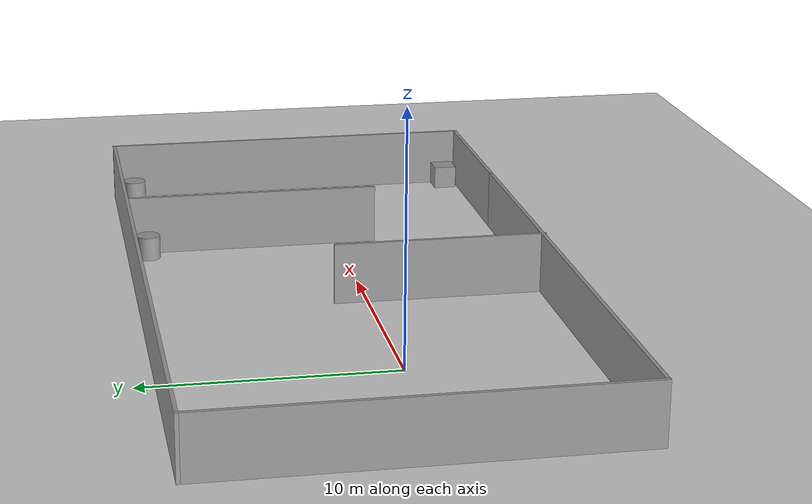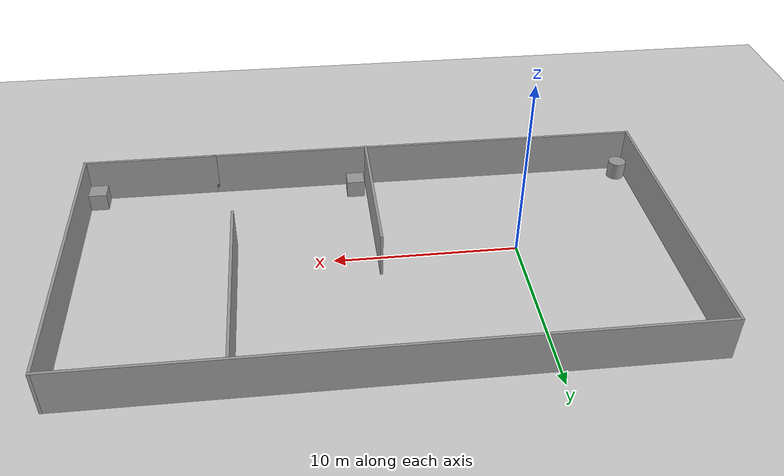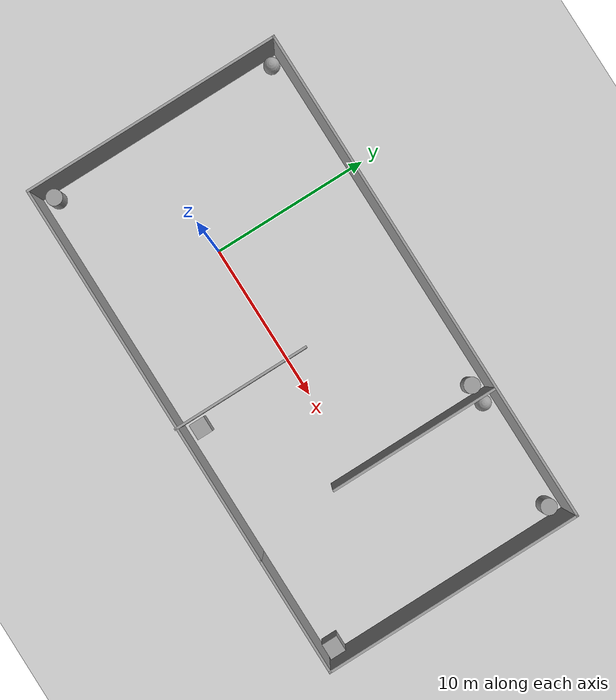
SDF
<sdf version="1.7">
 <world name="default">
  <light name="sun" type="directional">
   <pose>0 0 10 0 -0 0</pose>
   <diffuse>0.8 0.8 0.8 1</diffuse>
   <specular>0.2 0.2 0.2 1</specular>
   <attenuation>
    <range>1000</range>
    <constant>0.9</constant>
    <linear>0.01</linear>
    <quadratic>0.001</quadratic>
   </attenuation>
   <direction>-0.5 0.1 -0.9</direction>
   <spot><inner_angle>0</inner_angle><outer_angle>0</outer_angle><falloff>0</falloff></spot>
  </light>
  <model name="ground_plane">
   <static>1</static>
   <link name="link">
    <collision name="collision">
     <geometry><plane><normal>0 0 1</normal><size>100 100</size></plane></geometry>
     <surface>
      <contact><collide_bitmask>65535</collide_bitmask></contact>
      <friction><ode><mu>100</mu><mu2>50</mu2></ode></friction>
     </surface>
    </collision>
    <visual name="visual">
     <cast_shadows>0</cast_shadows>
     <geometry><plane><normal>0 0 1</normal><size>100 100</size></plane></geometry>
     <material>
      <script><uri>file://media/materials/scripts/gazebo.material</uri><name>Gazebo/Grey</name></script>
     </material>
    </visual>
   </link>
  </model>
  <gravity>0 0 -9.8</gravity>
  <magnetic_field>6e-06 2.3e-05 -4.2e-05</magnetic_field>
  <atmosphere type="adiabatic"/>
  <physics type="ode">
   <max_step_size>0.001</max_step_size>
   <real_time_factor>1</real_time_factor>
   <real_time_update_rate>1000</real_time_update_rate>
  </physics>
  <scene><ambient>0.4 0.4 0.4 1</ambient><background>0.7 0.7 0.7 1</background><shadows>1</shadows></scene>
  <spherical_coordinates>
   <surface_model>EARTH_WGS84</surface_model>
   <latitude_deg>0</latitude_deg>
   <longitude_deg>0</longitude_deg>
   <elevation>0</elevation>
   <heading_deg>0</heading_deg>
  </spherical_coordinates>
  <model name="xzk2">
   <pose>7.72474 0.897236 0 0 -0 0</pose>
   <link name="Wall_1">
    <collision name="Wall_1_Collision">
     <geometry><box><size>24.5 0.15 2.5</size></box></geometry>
     <pose>0 0 1.25 0 -0 0</pose>
    </collision>
    <visual name="Wall_1_Visual">
     <pose>0 0 1.25 0 -0 0</pose>
     <geometry><box><size>24.5 0.15 2.5</size></box></geometry>
     <material>
      <script><uri>file://media/materials/scripts/gazebo.material</uri><name>Gazebo/Grey</name></script>
      <ambient>1 1 1 1</ambient>
     </material>
     <meta><layer>0</layer></meta>
    </visual>
    <pose>-3.6 -8.13926 0 0 -0 0</pose>
   </link>
   <link name="Wall_2">
    <collision name="Wall_2_Collision">
     <geometry><box><size>7.5 0.15 2.5</size></box></geometry>
     <pose>0 0 1.25 0 -0 0</pose>
    </collision>
    <visual name="Wall_2_Visual">
     <pose>0 0 1.25 0 -0 0</pose>
     <geometry><box><size>7.5 0.15 2.5</size></box></geometry>
     <material>
      <script><uri>file://media/materials/scripts/gazebo.material</uri><name>Gazebo/Grey</name></script>
      <ambient>1 1 1 1</ambient>
     </material>
     <meta><layer>0</layer></meta>
    </visual>
    <pose>12.25 -8.13926 0 0 -0 0</pose>
   </link>
   <link name="Wall_3">
    <collision name="Wall_3_Collision">
     <geometry><box><size>16.5 0.15 2.5</size></box></geometry>
     <pose>0 0 1.25 0 -0 0</pose>
    </collision>
    <visual name="Wall_3_Visual">
     <pose>0 0 1.25 0 -0 0</pose>
     <geometry><box><size>16.5 0.15 2.5</size></box></geometry>
     <material>
      <script><uri>file://media/materials/scripts/gazebo.material</uri><name>Gazebo/Grey</name></script>
      <ambient>1 1 1 1</ambient>
     </material>
     <meta><layer>0</layer></meta>
    </visual>
    <pose>15.925 0.035737 0 0 -0 1.5708</pose>
   </link>
   <link name="Wall_4">
    <collision name="Wall_4_Collision">
     <geometry><box><size>32 0.15 2.5</size></box></geometry>
     <pose>0 0 1.25 0 -0 0</pose>
    </collision>
    <visual name="Wall_4_Visual">
     <pose>0 0 1.25 0 -0 0</pose>
     <geometry><box><size>32 0.15 2.5</size></box></geometry>
     <material>
      <script><uri>file://media/materials/scripts/gazebo.material</uri><name>Gazebo/Grey</name></script>
      <ambient>1 1 1 1</ambient>
     </material>
     <meta><layer>0</layer></meta>
    </visual>
    <pose>0 8.21074 0 0 -0 3.14159</pose>
   </link>
   <link name="Wall_5">
    <collision name="Wall_5_Collision">
     <geometry><box><size>16.5 0.15 2.5</size></box></geometry>
     <pose>0 0 1.25 0 -0 0</pose>
    </collision>
    <visual name="Wall_5_Visual">
     <pose>0 0 1.25 0 -0 0</pose>
     <geometry><box><size>16.5 0.15 2.5</size></box></geometry>
     <material>
      <script><uri>file://media/materials/scripts/gazebo.material</uri><name>Gazebo/Grey</name></script>
      <ambient>1 1 1 1</ambient>
     </material>
     <meta><layer>0</layer></meta>
    </visual>
    <pose>-15.925 0.035737 0 0 -0 -1.5708</pose>
   </link>
   <link name="Wall_7">
    <collision name="Wall_7_Collision">
     <geometry><box><size>8.75 0.15 2.5</size></box></geometry>
     <pose>0 0 1.25 0 -0 0</pose>
    </collision>
    <visual name="Wall_7_Visual">
     <pose>0 0 1.25 0 -0 0</pose>
     <geometry><box><size>8.75 0.15 2.5</size></box></geometry>
     <material>
      <script><uri>file://media/materials/scripts/gazebo.material</uri><name>Gazebo/Grey</name></script>
      <ambient>1 1 1 1</ambient>
     </material>
     <meta><layer>0</layer></meta>
    </visual>
    <pose>-0.168492 -3.91074 0 0 -0 1.5708</pose>
   </link>
   <link name="Wall_9">
    <collision name="Wall_9_Collision">
     <geometry><box><size>10.75 0.15 2.5</size></box></geometry>
     <pose>0 0 1.25 0 -0 0</pose>
    </collision>
    <visual name="Wall_9_Visual">
     <pose>0 0 1.25 0 -0 0</pose>
     <geometry><box><size>10.75 0.15 2.5</size></box></geometry>
     <material>
      <script><uri>file://media/materials/scripts/gazebo.material</uri><name>Gazebo/Grey</name></script>
      <ambient>1 1 1 1</ambient>
     </material>
     <meta><layer>0</layer></meta>
    </visual>
    <pose>7.47327 2.76339 0 0 -0 -1.5708</pose>
   </link>
   <static>1</static>
  </model>
  <model name="unit_cylinder">
   <pose>14.5529 8.2828 0.499992 -3e-06 4e-06 0</pose>
   <link name="link">
    <inertial>
     <mass>1</mass>
     <inertia><ixx>0.145833</ixx><ixy>0</ixy><ixz>0</ixz><iyy>0.145833</iyy><iyz>0</iyz><izz>0.125</izz></inertia>
    </inertial>
    <collision name="collision">
     <geometry><cylinder><radius>0.5</radius><length>1</length></cylinder></geometry>
    </collision>
    <visual name="visual">
     <geometry><cylinder><radius>0.5</radius><length>1</length></cylinder></geometry>
     <material>
      <script><name>Gazebo/Grey</name><uri>file://media/materials/scripts/gazebo.material</uri></script>
     </material>
    </visual>
   </link>
  </model>
  <model name="unit_box">
   <pose>8.26855 -6.32557 0.499995 -1e-05 -0 -0</pose>
   <link name="link">
    <inertial>
     <mass>1</mass>
     <inertia>
      <ixx>0.166667</ixx>
      <ixy>0</ixy>
      <ixz>0</ixz>
      <iyy>0.166667</iyy>
      <iyz>0</iyz>
      <izz>0.166667</izz>
     </inertia>
    </inertial>
    <collision name="collision"><geometry><box><size>1 1 1</size></box></geometry></collision>
    <visual name="visual">
     <geometry><box><size>1 1 1</size></box></geometry>
     <material>
      <script><name>Gazebo/Grey</name><uri>file://media/materials/scripts/gazebo.material</uri></script>
     </material>
    </visual>
   </link>
  </model>
  <model name="unit_sphere">
   <pose>-7.51275 8.46086 0.5 0 -0 0</pose>
   <link name="link">
    <inertial>
     <mass>1</mass>
     <inertia><ixx>0.1</ixx><ixy>0</ixy><ixz>0</ixz><iyy>0.1</iyy><iyz>0</iyz><izz>0.1</izz></inertia>
    </inertial>
    <collision name="collision"><geometry><sphere><radius>0.5</radius></sphere></geometry></collision>
    <visual name="visual">
     <geometry><sphere><radius>0.5</radius></sphere></geometry>
     <material>
      <script><name>Gazebo/Grey</name><uri>file://media/materials/scripts/gazebo.material</uri></script>
     </material>
    </visual>
   </link>
  </model>
  <model name="unit_cylinder_0">
   <pose>-7.6036 -6.39069 0.499993 -3e-06 -3e-06 0</pose>
   <link name="link">
    <inertial>
     <mass>1</mass>
     <inertia><ixx>0.145833</ixx><ixy>0</ixy><ixz>0</ixz><iyy>0.145833</iyy><iyz>0</iyz><izz>0.125</izz></inertia>
    </inertial>
    <collision name="collision">
     <geometry><cylinder><radius>0.5</radius><length>1</length></cylinder></geometry>
    </collision>
    <visual name="visual">
     <geometry><cylinder><radius>0.5</radius><length>1</length></cylinder></geometry>
     <material>
      <script><name>Gazebo/Grey</name><uri>file://media/materials/scripts/gazebo.material</uri></script>
     </material>
    </visual>
   </link>
  </model>
  <model name="unit_box_0">
   <pose>23.0748 -6.56641 0.499995 0 1e-05 5e-06</pose>
   <link name="link">
    <inertial>
     <mass>1</mass>
     <inertia>
      <ixx>0.166667</ixx>
      <ixy>0</ixy>
      <ixz>0</ixz>
      <iyy>0.166667</iyy>
      <iyz>0</iyz>
      <izz>0.166667</izz>
     </inertia>
    </inertial>
    <collision name="collision"><geometry><box><size>1 1 1</size></box></geometry></collision>
    <visual name="visual">
     <geometry><box><size>1 1 1</size></box></geometry>
     <material>
      <script><name>Gazebo/Grey</name><uri>file://media/materials/scripts/gazebo.material</uri></script>
     </material>
    </visual>
   </link>
  </model>
  <model name="unit_cylinder_1">
   <pose>22.8562 8.28382 0.499993 -3e-06 -4e-06 -0</pose>
   <link name="link">
    <inertial>
     <mass>1</mass>
     <inertia><ixx>0.145833</ixx><ixy>0</ixy><ixz>0</ixz><iyy>0.145833</iyy><iyz>0</iyz><izz>0.125</izz></inertia>
    </inertial>
    <collision name="collision">
     <geometry><cylinder><radius>0.5</radius><length>1</length></cylinder></geometry>
    </collision>
    <visual name="visual">
     <geometry><cylinder><radius>0.5</radius><length>1</length></cylinder></geometry>
     <material>
      <script><name>Gazebo/Grey</name><uri>file://media/materials/scripts/gazebo.material</uri></script>
     </material>
    </visual>
   </link>
  </model>
  <model name="unit_sphere_0">
   <pose>15.8087 8.36088 0.5 0 -0 0</pose>
   <link name="link">
    <inertial>
     <mass>1</mass>
     <inertia><ixx>0.1</ixx><ixy>0</ixy><ixz>0</ixz><iyy>0.1</iyy><iyz>0</iyz><izz>0.1</izz></inertia>
    </inertial>
    <collision name="collision"><geometry><sphere><radius>0.5</radius></sphere></geometry></collision>
    <visual name="visual">
     <geometry><sphere><radius>0.5</radius></sphere></geometry>
     <material>
      <script><name>Gazebo/Grey</name><uri>file://media/materials/scripts/gazebo.material</uri></script>
     </material>
    </visual>
   </link>
  </model>
 </world>
</sdf>
